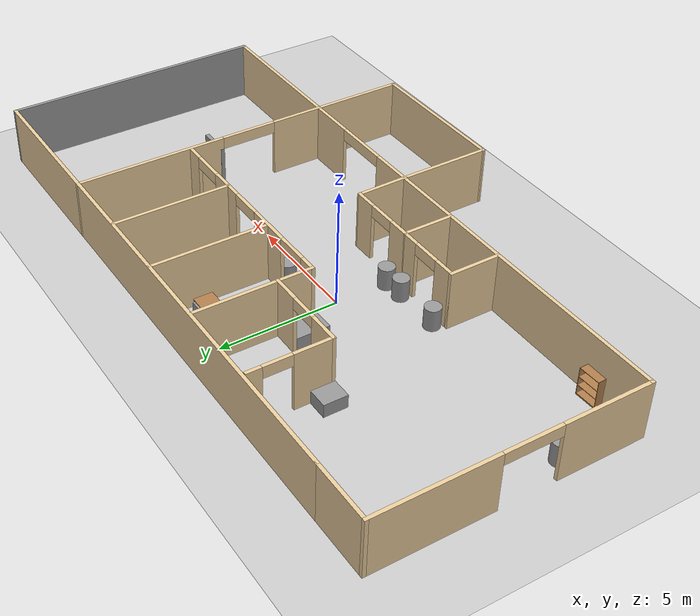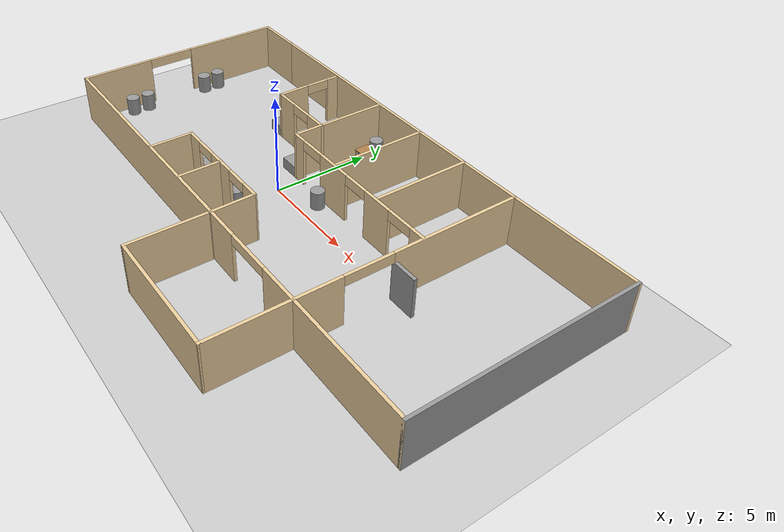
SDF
<sdf version="1.6">
 <world name="default">
  <model name="ground_plane">
   <static>true</static>
   <link name="link">
    <collision name="collision">
     <geometry><plane><normal>0 0 1</normal><size>100 100</size></plane></geometry>
     <surface>
      <contact><collide_bitmask>65535</collide_bitmask></contact>
      <friction><ode><mu>100</mu><mu2>50</mu2></ode></friction>
     </surface>
    </collision>
    <visual name="visual">
     <cast_shadows>0</cast_shadows>
     <geometry><plane><normal>0 0 1</normal><size>100 100</size></plane></geometry>
     <material>
      <script><uri>file://media/materials/scripts/gazebo.material</uri><name>Gazebo/Grey</name></script>
     </material>
    </visual>
   </link>
  </model>
  <model name="office-final">
   <static>true</static>
   <pose>2.08602 -1.20157 0 0 -0 0</pose>
   <link name="Door_10">
    <collision name="Door_10_Collision">
     <geometry><box><size>1.35 0.17 2</size></box></geometry>
     <pose>0 0 1 0 -0 0</pose>
    </collision>
    <visual name="Door_10_Visual">
     <pose>0 0 1 0 -0 0</pose>
     <geometry><box><size>1.35 0.17 2</size></box></geometry>
     <material>
      <script><uri>file://media/materials/scripts/gazebo.material</uri><name>Gazebo/Grey</name></script>
     </material>
    </visual>
    <pose>7.39418 1.10816 0 0 -0 0</pose>
   </link>
   <link name="Wall_0">
    <collision name="Wall_0_Collision">
     <geometry><box><size>11.25 0.15 2.5</size></box></geometry>
     <pose>0 0 1.25 0 -0 0</pose>
    </collision>
    <visual name="Wall_0_Visual">
     <pose>0 0 1.25 0 -0 0</pose>
     <geometry><box><size>11.25 0.15 2.5</size></box></geometry>
     <material>
      <script><uri>file://media/materials/scripts/gazebo.material</uri><name>Gazebo/Grey</name></script>
      <ambient>1 1 1 1</ambient>
     </material>
     <meta><layer>0</layer></meta>
    </visual>
    <pose>13.225 1.94023 0 0 -0 1.5708</pose>
   </link>
   <link name="Wall_1">
    <collision name="Wall_1_Collision">
     <geometry><box><size>24 0.15 2.5</size></box></geometry>
     <pose>0 0 1.25 0 -0 0</pose>
    </collision>
    <visual name="Wall_1_Visual">
     <pose>0 0 1.25 0 -0 0</pose>
     <geometry><box><size>24 0.15 2.5</size></box></geometry>
     <material>
      <script><uri>file://media/materials/scripts/gazebo.material</uri><name>Gazebo/Grey</name></script>
      <ambient>0.921569 0.807843 0.615686 1</ambient>
     </material>
     <meta><layer>0</layer></meta>
    </visual>
    <pose>1.3 7.49023 0 0 -0 3.14159</pose>
   </link>
   <link name="Wall_12">
    <collision name="Wall_12_Collision">
     <geometry><box><size>5 0.15 2.5</size></box></geometry>
     <pose>0 0 1.25 0 -0 0</pose>
    </collision>
    <visual name="Wall_12_Visual">
     <pose>0 0 1.25 0 -0 0</pose>
     <geometry><box><size>5 0.15 2.5</size></box></geometry>
     <material>
      <script><uri>file://media/materials/scripts/gazebo.material</uri><name>Gazebo/Grey</name></script>
      <ambient>0.921569 0.807843 0.615686 1</ambient>
     </material>
     <meta><layer>0</layer></meta>
    </visual>
    <pose>-2.48513 4.96387 0 0 -0 1.5708</pose>
   </link>
   <link name="Wall_14">
    <collision name="Wall_14_Collision">
     <geometry><box><size>2.25 0.15 2.5</size></box></geometry>
     <pose>0 0 1.25 0 -0 0</pose>
    </collision>
    <visual name="Wall_14_Visual">
     <pose>0 0 1.25 0 -0 0</pose>
     <geometry><box><size>2.25 0.15 2.5</size></box></geometry>
     <material>
      <script><uri>file://media/materials/scripts/gazebo.material</uri><name>Gazebo/Grey</name></script>
      <ambient>0.921569 0.807843 0.615686 1</ambient>
     </material>
     <meta><layer>0</layer></meta>
    </visual>
    <pose>-5.35061 -2.55476 0 0 -0 1.5708</pose>
   </link>
   <link name="Wall_15">
    <pose>-2.42561 -1.50476 0 0 -0 0</pose>
    <visual name="Wall_15_Visual_0">
     <pose>-2.51281 0 1.25 0 -0 0</pose>
     <geometry><box><size>0.974378 0.15 2.5</size></box></geometry>
     <material>
      <script><uri>file://media/materials/scripts/gazebo.material</uri><name>Gazebo/Grey</name></script>
      <ambient>0.921569 0.807843 0.615686 1</ambient>
     </material>
     <meta><layer>0</layer></meta>
    </visual>
    <collision name="Wall_15_Collision_0">
     <geometry><box><size>0.974378 0.15 2.5</size></box></geometry>
     <pose>-2.51281 0 1.25 0 -0 0</pose>
    </collision>
    <visual name="Wall_15_Visual_1">
     <pose>-0.009677 0 1.25 0 -0 0</pose>
     <geometry><box><size>1.63189 0.15 2.5</size></box></geometry>
     <material>
      <script><uri>file://media/materials/scripts/gazebo.material</uri><name>Gazebo/Grey</name></script>
      <ambient>0.921569 0.807843 0.615686 1</ambient>
     </material>
     <meta><layer>0</layer></meta>
    </visual>
    <collision name="Wall_15_Collision_1">
     <geometry><box><size>1.63189 0.15 2.5</size></box></geometry>
     <pose>-0.009677 0 1.25 0 -0 0</pose>
    </collision>
    <visual name="Wall_15_Visual_2">
     <pose>2.50313 0 1.25 0 -0 0</pose>
     <geometry><box><size>0.993732 0.15 2.5</size></box></geometry>
     <material>
      <script><uri>file://media/materials/scripts/gazebo.material</uri><name>Gazebo/Grey</name></script>
      <ambient>0.921569 0.807843 0.615686 1</ambient>
     </material>
     <meta><layer>0</layer></meta>
    </visual>
    <collision name="Wall_15_Collision_2">
     <geometry><box><size>0.993732 0.15 2.5</size></box></geometry>
     <pose>2.50313 0 1.25 0 -0 0</pose>
    </collision>
    <visual name="Wall_15_Visual_3">
     <pose>-1.42562 0 2.25 0 -0 0</pose>
     <geometry><box><size>1.2 0.15 0.5</size></box></geometry>
     <material>
      <script><uri>file://media/materials/scripts/gazebo.material</uri><name>Gazebo/Grey</name></script>
      <ambient>0.921569 0.807843 0.615686 1</ambient>
     </material>
     <meta><layer>0</layer></meta>
    </visual>
    <collision name="Wall_15_Collision_3">
     <geometry><box><size>1.2 0.15 0.5</size></box></geometry>
     <pose>-1.42562 0 2.25 0 -0 0</pose>
    </collision>
    <visual name="Wall_15_Visual_4">
     <pose>1.40627 0 2.25 0 -0 0</pose>
     <geometry><box><size>1.2 0.15 0.5</size></box></geometry>
     <material>
      <script><uri>file://media/materials/scripts/gazebo.material</uri><name>Gazebo/Grey</name></script>
      <ambient>0.921569 0.807843 0.615686 1</ambient>
     </material>
     <meta><layer>0</layer></meta>
    </visual>
    <collision name="Wall_15_Collision_4">
     <geometry><box><size>1.2 0.15 0.5</size></box></geometry>
     <pose>1.40627 0 2.25 0 -0 0</pose>
    </collision>
   </link>
   <link name="Wall_16">
    <collision name="Wall_16_Collision">
     <geometry><box><size>2.2954 0.15 2.5</size></box></geometry>
     <pose>0 0 1.25 0 -0 0</pose>
    </collision>
    <visual name="Wall_16_Visual">
     <pose>0 0 1.25 0 -0 0</pose>
     <geometry><box><size>2.2954 0.15 2.5</size></box></geometry>
     <material>
      <script><uri>file://media/materials/scripts/gazebo.material</uri><name>Gazebo/Grey</name></script>
      <ambient>0.921569 0.807843 0.615686 1</ambient>
     </material>
     <meta><layer>0</layer></meta>
    </visual>
    <pose>0.516727 -2.57732 0 0 -0 -1.55463</pose>
   </link>
   <link name="Wall_19">
    <collision name="Wall_19_Collision">
     <geometry><box><size>2.25 0.15 2.5</size></box></geometry>
     <pose>0 0 1.25 0 -0 0</pose>
    </collision>
    <visual name="Wall_19_Visual">
     <pose>0 0 1.25 0 -0 0</pose>
     <geometry><box><size>2.25 0.15 2.5</size></box></geometry>
     <material>
      <script><uri>file://media/materials/scripts/gazebo.material</uri><name>Gazebo/Grey</name></script>
      <ambient>0.921569 0.807843 0.615686 1</ambient>
     </material>
     <meta><layer>0</layer></meta>
    </visual>
    <pose>-2.50061 -2.55476 0 0 -0 -1.5708</pose>
   </link>
   <link name="Wall_2">
    <collision name="Wall_2_Collision">
     <geometry><box><size>2.75 0.15 2.5</size></box></geometry>
     <pose>0 0 1.25 0 -0 0</pose>
    </collision>
    <visual name="Wall_2_Visual">
     <pose>0 0 1.25 0 -0 0</pose>
     <geometry><box><size>2.75 0.15 2.5</size></box></geometry>
     <material>
      <script><uri>file://media/materials/scripts/gazebo.material</uri><name>Gazebo/Grey</name></script>
      <ambient>0.921569 0.807843 0.615686 1</ambient>
     </material>
     <meta><layer>0</layer></meta>
    </visual>
    <pose>-11.925 7.49023 0 0 -0 3.14159</pose>
   </link>
   <link name="Wall_21">
    <collision name="Wall_21_Collision">
     <geometry><box><size>5 0.15 2.5</size></box></geometry>
     <pose>0 0 1.25 0 -0 0</pose>
    </collision>
    <visual name="Wall_21_Visual">
     <pose>0 0 1.25 0 -0 0</pose>
     <geometry><box><size>5 0.15 2.5</size></box></geometry>
     <material>
      <script><uri>file://media/materials/scripts/gazebo.material</uri><name>Gazebo/Grey</name></script>
      <ambient>0.921569 0.807843 0.615686 1</ambient>
     </material>
     <meta><layer>0</layer></meta>
    </visual>
    <pose>0.61017 5.06244 0 0 -0 -1.5708</pose>
   </link>
   <link name="Wall_24">
    <collision name="Wall_24_Collision">
     <geometry><box><size>5 0.15 2.5</size></box></geometry>
     <pose>0 0 1.25 0 -0 0</pose>
    </collision>
    <visual name="Wall_24_Visual">
     <pose>0 0 1.25 0 -0 0</pose>
     <geometry><box><size>5 0.15 2.5</size></box></geometry>
     <material>
      <script><uri>file://media/materials/scripts/gazebo.material</uri><name>Gazebo/Grey</name></script>
      <ambient>0.921569 0.807843 0.615686 1</ambient>
     </material>
     <meta><layer>0</layer></meta>
    </visual>
    <pose>3.65272 5.02706 0 0 -0 -1.5708</pose>
   </link>
   <link name="Wall_26">
    <collision name="Wall_26_Collision">
     <geometry><box><size>3.99038 0.15 2.5</size></box></geometry>
     <pose>0 0 1.25 0 -0 0</pose>
    </collision>
    <visual name="Wall_26_Visual">
     <pose>0 0 1.25 0 -0 0</pose>
     <geometry><box><size>3.99038 0.15 2.5</size></box></geometry>
     <material>
      <script><uri>file://media/materials/scripts/gazebo.material</uri><name>Gazebo/Grey</name></script>
      <ambient>0.921569 0.807843 0.615686 1</ambient>
     </material>
     <meta><layer>0</layer></meta>
    </visual>
    <pose>0.534066 -5.56987 0 0 -0 -1.5708</pose>
   </link>
   <link name="Wall_3">
    <pose>-13.225 1.94023 0 0 -0 -1.5708</pose>
    <visual name="Wall_3_Visual_0">
     <pose>-3.07666 0 1.25 0 -0 0</pose>
     <geometry><box><size>5.09669 0.15 2.5</size></box></geometry>
     <material>
      <script><uri>file://media/materials/scripts/gazebo.material</uri><name>Gazebo/Grey</name></script>
      <ambient>0.921569 0.807843 0.615686 1</ambient>
     </material>
     <meta><layer>0</layer></meta>
    </visual>
    <collision name="Wall_3_Collision_0">
     <geometry><box><size>5.09669 0.15 2.5</size></box></geometry>
     <pose>-3.07666 0 1.25 0 -0 0</pose>
    </collision>
    <visual name="Wall_3_Visual_1">
     <pose>3.74834 0 1.25 0 -0 0</pose>
     <geometry><box><size>3.75331 0.15 2.5</size></box></geometry>
     <material>
      <script><uri>file://media/materials/scripts/gazebo.material</uri><name>Gazebo/Grey</name></script>
      <ambient>0.921569 0.807843 0.615686 1</ambient>
     </material>
     <meta><layer>0</layer></meta>
    </visual>
    <collision name="Wall_3_Collision_1">
     <geometry><box><size>3.75331 0.15 2.5</size></box></geometry>
     <pose>3.74834 0 1.25 0 -0 0</pose>
    </collision>
    <visual name="Wall_3_Visual_2">
     <pose>0.671688 0 2.25 0 -0 0</pose>
     <geometry><box><size>2.4 0.15 0.5</size></box></geometry>
     <material>
      <script><uri>file://media/materials/scripts/gazebo.material</uri><name>Gazebo/Grey</name></script>
      <ambient>0.921569 0.807843 0.615686 1</ambient>
     </material>
     <meta><layer>0</layer></meta>
    </visual>
    <collision name="Wall_3_Collision_2">
     <geometry><box><size>2.4 0.15 0.5</size></box></geometry>
     <pose>0.671688 0 2.25 0 -0 0</pose>
    </collision>
   </link>
   <link name="Wall_35">
    <collision name="Wall_35_Collision">
     <geometry><box><size>4 0.15 2.5</size></box></geometry>
     <pose>0 0 1.25 0 -0 0</pose>
    </collision>
    <visual name="Wall_35_Visual">
     <pose>0 0 1.25 0 -0 0</pose>
     <geometry><box><size>4 0.15 2.5</size></box></geometry>
     <material>
      <script><uri>file://media/materials/scripts/gazebo.material</uri><name>Gazebo/Grey</name></script>
      <ambient>0.921569 0.807843 0.615686 1</ambient>
     </material>
     <meta><layer>0</layer></meta>
    </visual>
    <pose>6.80105 -5.53477 0 0 -0 -1.5708</pose>
   </link>
   <link name="Wall_37">
    <collision name="Wall_37_Collision">
     <geometry><box><size>6.41706 0.15 2.5</size></box></geometry>
     <pose>0 0 1.25 0 -0 0</pose>
    </collision>
    <visual name="Wall_37_Visual">
     <pose>0 0 1.25 0 -0 0</pose>
     <geometry><box><size>6.41706 0.15 2.5</size></box></geometry>
     <material>
      <script><uri>file://media/materials/scripts/gazebo.material</uri><name>Gazebo/Grey</name></script>
      <ambient>0.921569 0.807843 0.615686 1</ambient>
     </material>
     <meta><layer>0</layer></meta>
    </visual>
    <pose>3.66756 -7.47482 0 0 -0 0.004804</pose>
   </link>
   <link name="Wall_39">
    <pose>-4.27574 3.96305 0 0 -0 3.14159</pose>
    <visual name="Wall_39_Visual_0">
     <pose>-1.26771 0 1.25 0 -0 0</pose>
     <geometry><box><size>1.21459 0.15 2.5</size></box></geometry>
     <material>
      <script><uri>file://media/materials/scripts/gazebo.material</uri><name>Gazebo/Grey</name></script>
      <ambient>0.921569 0.807843 0.615686 1</ambient>
     </material>
     <meta><layer>0</layer></meta>
    </visual>
    <collision name="Wall_39_Collision_0">
     <geometry><box><size>1.21459 0.15 2.5</size></box></geometry>
     <pose>-1.26771 0 1.25 0 -0 0</pose>
    </collision>
    <visual name="Wall_39_Visual_1">
     <pose>1.2073 0 1.25 0 -0 0</pose>
     <geometry><box><size>1.33541 0.15 2.5</size></box></geometry>
     <material>
      <script><uri>file://media/materials/scripts/gazebo.material</uri><name>Gazebo/Grey</name></script>
      <ambient>0.921569 0.807843 0.615686 1</ambient>
     </material>
     <meta><layer>0</layer></meta>
    </visual>
    <collision name="Wall_39_Collision_1">
     <geometry><box><size>1.33541 0.15 2.5</size></box></geometry>
     <pose>1.2073 0 1.25 0 -0 0</pose>
    </collision>
    <visual name="Wall_39_Visual_2">
     <pose>-0.06041 0 2.25 0 -0 0</pose>
     <geometry><box><size>1.2 0.15 0.5</size></box></geometry>
     <material>
      <script><uri>file://media/materials/scripts/gazebo.material</uri><name>Gazebo/Grey</name></script>
      <ambient>0.921569 0.807843 0.615686 1</ambient>
     </material>
     <meta><layer>0</layer></meta>
    </visual>
    <collision name="Wall_39_Collision_2">
     <geometry><box><size>1.2 0.15 0.5</size></box></geometry>
     <pose>-0.06041 0 2.25 0 -0 0</pose>
    </collision>
   </link>
   <link name="Wall_4">
    <pose>-0 -3.60977 0 0 -0 0</pose>
    <visual name="Wall_4_Visual_0">
     <pose>-5.47979 0 1.25 0 -0 0</pose>
     <geometry><box><size>15.6404 0.15 2.5</size></box></geometry>
     <material>
      <script><uri>file://media/materials/scripts/gazebo.material</uri><name>Gazebo/Grey</name></script>
      <ambient>0.921569 0.807843 0.615686 1</ambient>
     </material>
     <meta><layer>0</layer></meta>
    </visual>
    <collision name="Wall_4_Collision_0">
     <geometry><box><size>15.6404 0.15 2.5</size></box></geometry>
     <pose>-5.47979 0 1.25 0 -0 0</pose>
    </collision>
    <visual name="Wall_4_Visual_1">
     <pose>9.02021 0 1.25 0 -0 0</pose>
     <geometry><box><size>8.55959 0.15 2.5</size></box></geometry>
     <material>
      <script><uri>file://media/materials/scripts/gazebo.material</uri><name>Gazebo/Grey</name></script>
      <ambient>0.921569 0.807843 0.615686 1</ambient>
     </material>
     <meta><layer>0</layer></meta>
    </visual>
    <collision name="Wall_4_Collision_1">
     <geometry><box><size>8.55959 0.15 2.5</size></box></geometry>
     <pose>9.02021 0 1.25 0 -0 0</pose>
    </collision>
    <visual name="Wall_4_Visual_2">
     <pose>3.54041 0 2.25 0 -0 0</pose>
     <geometry><box><size>2.4 0.15 0.5</size></box></geometry>
     <material>
      <script><uri>file://media/materials/scripts/gazebo.material</uri><name>Gazebo/Grey</name></script>
      <ambient>0.921569 0.807843 0.615686 1</ambient>
     </material>
     <meta><layer>0</layer></meta>
    </visual>
    <collision name="Wall_4_Collision_2">
     <geometry><box><size>2.4 0.15 0.5</size></box></geometry>
     <pose>3.54041 0 2.25 0 -0 0</pose>
    </collision>
   </link>
   <link name="Wall_40">
    <pose>-6.07574 5.63805 0 0 -0 1.5708</pose>
    <visual name="Wall_40_Visual_0">
     <pose>-0.9202 0 1.25 0 -0 0</pose>
     <geometry><box><size>1.6596 0.15 2.5</size></box></geometry>
     <material>
      <script><uri>file://media/materials/scripts/gazebo.material</uri><name>Gazebo/Grey</name></script>
      <ambient>0.921569 0.807843 0.615686 1</ambient>
     </material>
     <meta><layer>0</layer></meta>
    </visual>
    <collision name="Wall_40_Collision_0">
     <geometry><box><size>1.6596 0.15 2.5</size></box></geometry>
     <pose>-0.9202 0 1.25 0 -0 0</pose>
    </collision>
    <visual name="Wall_40_Visual_1">
     <pose>1.4298 0 1.25 0 -0 0</pose>
     <geometry><box><size>0.640399 0.15 2.5</size></box></geometry>
     <material>
      <script><uri>file://media/materials/scripts/gazebo.material</uri><name>Gazebo/Grey</name></script>
      <ambient>0.921569 0.807843 0.615686 1</ambient>
     </material>
     <meta><layer>0</layer></meta>
    </visual>
    <collision name="Wall_40_Collision_1">
     <geometry><box><size>0.640399 0.15 2.5</size></box></geometry>
     <pose>1.4298 0 1.25 0 -0 0</pose>
    </collision>
    <visual name="Wall_40_Visual_2">
     <pose>0.509601 0 2.25 0 -0 0</pose>
     <geometry><box><size>1.2 0.15 0.5</size></box></geometry>
     <material>
      <script><uri>file://media/materials/scripts/gazebo.material</uri><name>Gazebo/Grey</name></script>
      <ambient>0.921569 0.807843 0.615686 1</ambient>
     </material>
     <meta><layer>0</layer></meta>
    </visual>
    <collision name="Wall_40_Collision_2">
     <geometry><box><size>1.2 0.15 0.5</size></box></geometry>
     <pose>0.509601 0 2.25 0 -0 0</pose>
    </collision>
   </link>
   <link name="Wall_5">
    <collision name="Wall_5_Collision">
     <geometry><box><size>11.25 0.15 2.5</size></box></geometry>
     <pose>0 0 1.25 0 -0 0</pose>
    </collision>
    <visual name="Wall_5_Visual">
     <pose>0 0 1.25 0 -0 0</pose>
     <geometry><box><size>11.25 0.15 2.5</size></box></geometry>
     <material>
      <script><uri>file://media/materials/scripts/gazebo.material</uri><name>Gazebo/Grey</name></script>
      <ambient>0.921569 0.807843 0.615686 1</ambient>
     </material>
     <meta><layer>0</layer></meta>
    </visual>
    <pose>13.225 1.94023 0 0 -0 1.5708</pose>
   </link>
   <link name="Wall_7">
    <pose>6.80105 1.94023 0 0 -0 1.5708</pose>
    <visual name="Wall_7_Visual_0">
     <pose>-4.46433 0 1.25 0 -0 0</pose>
     <geometry><box><size>2.32135 0.15 2.5</size></box></geometry>
     <material>
      <script><uri>file://media/materials/scripts/gazebo.material</uri><name>Gazebo/Grey</name></script>
      <ambient>0.921569 0.807843 0.615686 1</ambient>
     </material>
     <meta><layer>0</layer></meta>
    </visual>
    <collision name="Wall_7_Collision_0">
     <geometry><box><size>2.32135 0.15 2.5</size></box></geometry>
     <pose>-4.46433 0 1.25 0 -0 0</pose>
    </collision>
    <visual name="Wall_7_Visual_1">
     <pose>2.36067 0 1.25 0 -0 0</pose>
     <geometry><box><size>6.52865 0.15 2.5</size></box></geometry>
     <material>
      <script><uri>file://media/materials/scripts/gazebo.material</uri><name>Gazebo/Grey</name></script>
      <ambient>0.921569 0.807843 0.615686 1</ambient>
     </material>
     <meta><layer>0</layer></meta>
    </visual>
    <collision name="Wall_7_Collision_1">
     <geometry><box><size>6.52865 0.15 2.5</size></box></geometry>
     <pose>2.36067 0 1.25 0 -0 0</pose>
    </collision>
    <visual name="Wall_7_Visual_2">
     <pose>-2.10365 0 2.25 0 -0 0</pose>
     <geometry><box><size>2.4 0.15 0.5</size></box></geometry>
     <material>
      <script><uri>file://media/materials/scripts/gazebo.material</uri><name>Gazebo/Grey</name></script>
      <ambient>0.921569 0.807843 0.615686 1</ambient>
     </material>
     <meta><layer>0</layer></meta>
    </visual>
    <collision name="Wall_7_Collision_2">
     <geometry><box><size>2.4 0.15 0.5</size></box></geometry>
     <pose>-2.10365 0 2.25 0 -0 0</pose>
    </collision>
   </link>
   <link name="Wall_9">
    <pose>2.12737 2.53887 0 0 -0 3.14159</pose>
    <visual name="Wall_9_Visual_0">
     <pose>-4.27593 0 1.25 0 -0 0</pose>
     <geometry><box><size>0.823145 0.15 2.5</size></box></geometry>
     <material>
      <script><uri>file://media/materials/scripts/gazebo.material</uri><name>Gazebo/Grey</name></script>
      <ambient>0.921569 0.807843 0.615686 1</ambient>
     </material>
     <meta><layer>0</layer></meta>
    </visual>
    <collision name="Wall_9_Collision_0">
     <geometry><box><size>0.823145 0.15 2.5</size></box></geometry>
     <pose>-4.27593 0 1.25 0 -0 0</pose>
    </collision>
    <visual name="Wall_9_Visual_1">
     <pose>-1.64727 0 1.25 0 -0 0</pose>
     <geometry><box><size>1.63417 0.15 2.5</size></box></geometry>
     <material>
      <script><uri>file://media/materials/scripts/gazebo.material</uri><name>Gazebo/Grey</name></script>
      <ambient>0.921569 0.807843 0.615686 1</ambient>
     </material>
     <meta><layer>0</layer></meta>
    </visual>
    <collision name="Wall_9_Collision_1">
     <geometry><box><size>1.63417 0.15 2.5</size></box></geometry>
     <pose>-1.64727 0 1.25 0 -0 0</pose>
    </collision>
    <visual name="Wall_9_Visual_2">
     <pose>1.54876 0 1.25 0 -0 0</pose>
     <geometry><box><size>1.9579 0.15 2.5</size></box></geometry>
     <material>
      <script><uri>file://media/materials/scripts/gazebo.material</uri><name>Gazebo/Grey</name></script>
      <ambient>0.921569 0.807843 0.615686 1</ambient>
     </material>
     <meta><layer>0</layer></meta>
    </visual>
    <collision name="Wall_9_Collision_2">
     <geometry><box><size>1.9579 0.15 2.5</size></box></geometry>
     <pose>1.54876 0 1.25 0 -0 0</pose>
    </collision>
    <visual name="Wall_9_Visual_3">
     <pose>4.30761 0 1.25 0 -0 0</pose>
     <geometry><box><size>0.759788 0.15 2.5</size></box></geometry>
     <material>
      <script><uri>file://media/materials/scripts/gazebo.material</uri><name>Gazebo/Grey</name></script>
      <ambient>0.921569 0.807843 0.615686 1</ambient>
     </material>
     <meta><layer>0</layer></meta>
    </visual>
    <collision name="Wall_9_Collision_3">
     <geometry><box><size>0.759788 0.15 2.5</size></box></geometry>
     <pose>4.30761 0 1.25 0 -0 0</pose>
    </collision>
    <visual name="Wall_9_Visual_4">
     <pose>-3.16436 0 2.25 0 -0 0</pose>
     <geometry><box><size>1.4 0.15 0.5</size></box></geometry>
     <material>
      <script><uri>file://media/materials/scripts/gazebo.material</uri><name>Gazebo/Grey</name></script>
      <ambient>0.921569 0.807843 0.615686 1</ambient>
     </material>
     <meta><layer>0</layer></meta>
    </visual>
    <collision name="Wall_9_Collision_4">
     <geometry><box><size>1.4 0.15 0.5</size></box></geometry>
     <pose>-3.16436 0 2.25 0 -0 0</pose>
    </collision>
    <visual name="Wall_9_Visual_5">
     <pose>-0.130187 0 2.25 0 -0 0</pose>
     <geometry><box><size>1.4 0.15 0.5</size></box></geometry>
     <material>
      <script><uri>file://media/materials/scripts/gazebo.material</uri><name>Gazebo/Grey</name></script>
      <ambient>0.921569 0.807843 0.615686 1</ambient>
     </material>
     <meta><layer>0</layer></meta>
    </visual>
    <collision name="Wall_9_Collision_5">
     <geometry><box><size>1.4 0.15 0.5</size></box></geometry>
     <pose>-0.130187 0 2.25 0 -0 0</pose>
    </collision>
    <visual name="Wall_9_Visual_6">
     <pose>3.22771 0 2.25 0 -0 0</pose>
     <geometry><box><size>1.4 0.15 0.5</size></box></geometry>
     <material>
      <script><uri>file://media/materials/scripts/gazebo.material</uri><name>Gazebo/Grey</name></script>
      <ambient>0.921569 0.807843 0.615686 1</ambient>
     </material>
     <meta><layer>0</layer></meta>
    </visual>
    <collision name="Wall_9_Collision_6">
     <geometry><box><size>1.4 0.15 0.5</size></box></geometry>
     <pose>3.22771 0 2.25 0 -0 0</pose>
    </collision>
   </link>
   <static>1</static>
  </model>
  <model name="table_1">
   <static>true</static>
   <link name="link">
    <collision name="surface">
     <pose>0 0 1 0 -0 0</pose>
     <geometry><box><size>1.5 0.8 0.03</size></box></geometry>
     <surface><friction><ode><mu>0.6</mu><mu2>0.6</mu2></ode></friction></surface>
    </collision>
    <visual name="visual1">
     <pose>0 0 1 0 -0 0</pose>
     <geometry><box><size>1.5 0.8 0.03</size></box></geometry>
     <material>
      <script><uri>file://media/materials/scripts/gazebo.material</uri><name>Gazebo/Wood</name></script>
     </material>
    </visual>
    <collision name="front_left_leg">
     <pose>0.68 0.38 0.5 0 -0 0</pose>
     <geometry><cylinder><radius>0.02</radius><length>1</length></cylinder></geometry>
    </collision>
    <visual name="front_left_leg">
     <pose>0.68 0.38 0.5 0 -0 0</pose>
     <geometry><cylinder><radius>0.02</radius><length>1</length></cylinder></geometry>
     <material>
      <script><uri>file://media/materials/scripts/gazebo.material</uri><name>Gazebo/Grey</name></script>
     </material>
    </visual>
    <collision name="front_right_leg">
     <pose>0.68 -0.38 0.5 0 -0 0</pose>
     <geometry><cylinder><radius>0.02</radius><length>1</length></cylinder></geometry>
    </collision>
    <visual name="front_right_leg">
     <pose>0.68 -0.38 0.5 0 -0 0</pose>
     <geometry><cylinder><radius>0.02</radius><length>1</length></cylinder></geometry>
     <material>
      <script><uri>file://media/materials/scripts/gazebo.material</uri><name>Gazebo/Grey</name></script>
     </material>
    </visual>
    <collision name="back_right_leg">
     <pose>-0.68 -0.38 0.5 0 -0 0</pose>
     <geometry><cylinder><radius>0.02</radius><length>1</length></cylinder></geometry>
    </collision>
    <visual name="back_right_leg">
     <pose>-0.68 -0.38 0.5 0 -0 0</pose>
     <geometry><cylinder><radius>0.02</radius><length>1</length></cylinder></geometry>
     <material>
      <script><uri>file://media/materials/scripts/gazebo.material</uri><name>Gazebo/Grey</name></script>
     </material>
    </visual>
    <collision name="back_left_leg">
     <pose>-0.68 0.38 0.5 0 -0 0</pose>
     <geometry><cylinder><radius>0.02</radius><length>1</length></cylinder></geometry>
    </collision>
    <visual name="back_left_leg">
     <pose>-0.68 0.38 0.5 0 -0 0</pose>
     <geometry><cylinder><radius>0.02</radius><length>1</length></cylinder></geometry>
     <material>
      <script><uri>file://media/materials/scripts/gazebo.material</uri><name>Gazebo/Grey</name></script>
     </material>
    </visual>
   </link>
   <pose>1.13946 4.60865 0 0 -0 0</pose>
  </model>
  <model name="bookshelf_1">
   <static>true</static>
   <link name="link">
    <inertial><mass>1</mass></inertial>
    <collision name="back">
     <pose>0 0.005 0.6 0 -0 0</pose>
     <geometry><box><size>0.9 0.01 1.2</size></box></geometry>
    </collision>
    <visual name="visual1">
     <pose>0 0.005 0.6 0 -0 0</pose>
     <geometry><box><size>0.9 0.01 1.2</size></box></geometry>
     <material>
      <script><uri>file://media/materials/scripts/gazebo.material</uri><name>Gazebo/Wood</name></script>
     </material>
    </visual>
    <collision name="left_side">
     <pose>0.45 -0.195 0.6 0 -0 0</pose>
     <geometry><box><size>0.02 0.4 1.2</size></box></geometry>
    </collision>
    <visual name="visual2">
     <pose>0.45 -0.195 0.6 0 -0 0</pose>
     <geometry><box><size>0.02 0.4 1.2</size></box></geometry>
     <material>
      <script><uri>file://media/materials/scripts/gazebo.material</uri><name>Gazebo/Wood</name></script>
     </material>
    </visual>
    <collision name="right_side">
     <pose>-0.45 -0.195 0.6 0 -0 0</pose>
     <geometry><box><size>0.02 0.4 1.2</size></box></geometry>
    </collision>
    <visual name="visual3">
     <pose>-0.45 -0.195 0.6 0 -0 0</pose>
     <geometry><box><size>0.02 0.4 1.2</size></box></geometry>
     <material>
      <script><uri>file://media/materials/scripts/gazebo.material</uri><name>Gazebo/Wood</name></script>
     </material>
    </visual>
    <collision name="bottom">
     <pose>0 -0.195 0.03 0 -0 0</pose>
     <geometry><box><size>0.88 0.4 0.06</size></box></geometry>
    </collision>
    <visual name="visual4">
     <pose>0 -0.195 0.03 0 -0 0</pose>
     <geometry><box><size>0.88 0.4 0.06</size></box></geometry>
     <material>
      <script><uri>file://media/materials/scripts/gazebo.material</uri><name>Gazebo/Wood</name></script>
     </material>
    </visual>
    <collision name="top">
     <pose>0 -0.195 1.19 0 -0 0</pose>
     <geometry><box><size>0.88 0.4 0.02</size></box></geometry>
    </collision>
    <visual name="visual5">
     <pose>0 -0.195 1.19 0 -0 0</pose>
     <geometry><box><size>0.88 0.4 0.02</size></box></geometry>
     <material>
      <script><uri>file://media/materials/scripts/gazebo.material</uri><name>Gazebo/Wood</name></script>
     </material>
    </visual>
    <collision name="low_shelf">
     <pose>0 -0.195 0.43 0 -0 0</pose>
     <geometry><box><size>0.88 0.4 0.02</size></box></geometry>
    </collision>
    <visual name="visual6">
     <pose>0 -0.195 0.43 0 -0 0</pose>
     <geometry><box><size>0.88 0.4 0.02</size></box></geometry>
     <material>
      <script><uri>file://media/materials/scripts/gazebo.material</uri><name>Gazebo/Wood</name></script>
     </material>
    </visual>
    <collision name="high_shelf">
     <pose>0 -0.195 0.8 0 -0 0</pose>
     <geometry><box><size>0.88 0.4 0.02</size></box></geometry>
    </collision>
    <visual name="visual7">
     <pose>0 -0.195 0.8 0 -0 0</pose>
     <geometry><box><size>0.88 0.4 0.02</size></box></geometry>
     <material>
      <script><uri>file://media/materials/scripts/gazebo.material</uri><name>Gazebo/Wood</name></script>
     </material>
    </visual>
   </link>
   <pose>-8.86002 -4.77717 0 0 0 -3.11114</pose>
  </model>
  <model name="unit_cylinder_1_clone">
   <static>true</static>
   <pose>-10.6123 2.55168 0.464258 0 -0 0</pose>
   <link name="link">
    <inertial>
     <mass>1</mass>
     <inertia><ixx>0.145833</ixx><ixy>0</ixy><ixz>0</ixz><iyy>0.145833</iyy><iyz>0</iyz><izz>0.125</izz></inertia>
    </inertial>
    <collision name="collision">
     <geometry><cylinder><radius>0.337949</radius><length>0.928516</length></cylinder></geometry>
    </collision>
    <visual name="visual">
     <geometry><cylinder><radius>0.337949</radius><length>0.928516</length></cylinder></geometry>
     <material>
      <script><name>Gazebo/Grey</name><uri>file://media/materials/scripts/gazebo.material</uri></script>
     </material>
    </visual>
   </link>
  </model>
  <model name="unit_cylinder_1_clone_0">
   <static>true</static>
   <pose>-10.55 -1.7776 0.464255 0 -0 0</pose>
   <link name="link">
    <inertial>
     <mass>1</mass>
     <inertia><ixx>0.145833</ixx><ixy>0</ixy><ixz>0</ixz><iyy>0.145833</iyy><iyz>0</iyz><izz>0.125</izz></inertia>
    </inertial>
    <collision name="collision">
     <geometry><cylinder><radius>0.337949</radius><length>0.928516</length></cylinder></geometry>
    </collision>
    <visual name="visual">
     <geometry><cylinder><radius>0.337949</radius><length>0.928516</length></cylinder></geometry>
     <material>
      <script><name>Gazebo/Grey</name><uri>file://media/materials/scripts/gazebo.material</uri></script>
     </material>
    </visual>
   </link>
  </model>
  <model name="unit_cylinder_1_clone_1">
   <static>true</static>
   <pose>-10.5484 -2.64161 0.464251 -0 -0 -0</pose>
   <link name="link">
    <inertial>
     <mass>1</mass>
     <inertia><ixx>0.145833</ixx><ixy>0</ixy><ixz>0</ixz><iyy>0.145833</iyy><iyz>0</iyz><izz>0.125</izz></inertia>
    </inertial>
    <collision name="collision">
     <geometry><cylinder><radius>0.337949</radius><length>0.928516</length></cylinder></geometry>
    </collision>
    <visual name="visual">
     <geometry><cylinder><radius>0.337949</radius><length>0.928516</length></cylinder></geometry>
     <material>
      <script><name>Gazebo/Grey</name><uri>file://media/materials/scripts/gazebo.material</uri></script>
     </material>
    </visual>
   </link>
  </model>
  <model name="unit_cylinder_1_clone_4">
   <static>true</static>
   <pose>0.207474 5.67632 0.464249 0 1e-06 0.0968</pose>
   <link name="link">
    <inertial>
     <mass>1</mass>
     <inertia><ixx>0.145833</ixx><ixy>0</ixy><ixz>0</ixz><iyy>0.145833</iyy><iyz>0</iyz><izz>0.125</izz></inertia>
    </inertial>
    <collision name="collision">
     <geometry><cylinder><radius>0.337949</radius><length>0.928516</length></cylinder></geometry>
    </collision>
    <visual name="visual">
     <geometry><cylinder><radius>0.337949</radius><length>0.928516</length></cylinder></geometry>
     <material>
      <script><name>Gazebo/Grey</name><uri>file://media/materials/scripts/gazebo.material</uri></script>
     </material>
    </visual>
   </link>
  </model>
  <model name="unit_box">
   <static>true</static>
   <pose>-1.00124 1.97353 0.282238 0 0 -5e-06</pose>
   <link name="link">
    <inertial>
     <mass>1</mass>
     <inertia>
      <ixx>0.166667</ixx>
      <ixy>0</ixy>
      <ixz>0</ixz>
      <iyy>0.166667</iyy>
      <iyz>0</iyz>
      <izz>0.166667</izz>
     </inertia>
    </inertial>
    <collision name="collision"><geometry><box><size>1.0499 1.40988 0.564477</size></box></geometry></collision>
    <visual name="visual">
     <geometry><box><size>1.0499 1.40988 0.564477</size></box></geometry>
     <material>
      <script><name>Gazebo/Grey</name><uri>file://media/materials/scripts/gazebo.material</uri></script>
     </material>
    </visual>
   </link>
  </model>
  <model name="unit_box_clone_0">
   <static>true</static>
   <pose>-4.4829 3.19062 0.282238 0 -0 -6e-06</pose>
   <link name="link">
    <inertial>
     <mass>1</mass>
     <inertia>
      <ixx>0.166667</ixx>
      <ixy>0</ixy>
      <ixz>0</ixz>
      <iyy>0.166667</iyy>
      <iyz>0</iyz>
      <izz>0.166667</izz>
     </inertia>
    </inertial>
    <collision name="collision"><geometry><box><size>0.836328 1 0.564477</size></box></geometry></collision>
    <visual name="visual">
     <geometry><box><size>0.836328 1 0.564477</size></box></geometry>
     <material>
      <script><name>Gazebo/Grey</name><uri>file://media/materials/scripts/gazebo.material</uri></script>
     </material>
    </visual>
   </link>
  </model>
  <model name="unit_box_0_clone">
   <static>true</static>
   <pose>1.13181 4.6989 0.487582 -1e-06 -0 -0.000231</pose>
   <link name="link">
    <inertial>
     <mass>1</mass>
     <inertia>
      <ixx>0.166667</ixx>
      <ixy>0</ixy>
      <ixz>0</ixz>
      <iyy>0.166667</iyy>
      <iyz>0</iyz>
      <izz>0.166667</izz>
     </inertia>
    </inertial>
    <collision name="collision"><geometry><box><size>1.27603 0.792247 0.975162</size></box></geometry></collision>
    <visual name="visual">
     <geometry><box><size>1.27603 0.792247 0.975162</size></box></geometry>
     <material>
      <script><name>Gazebo/Grey</name><uri>file://media/materials/scripts/gazebo.material</uri></script>
     </material>
    </visual>
   </link>
  </model>
  <model name="unit_cylinder_1_clone_3_clone_clone">
   <static>true</static>
   <pose>-0.930502 -2.26168 0.464251 -0 -0 -0</pose>
   <link name="link">
    <inertial>
     <mass>1</mass>
     <inertia><ixx>0.145833</ixx><ixy>0</ixy><ixz>0</ixz><iyy>0.145833</iyy><iyz>0</iyz><izz>0.125</izz></inertia>
    </inertial>
    <collision name="collision">
     <geometry><cylinder><radius>0.337949</radius><length>0.928516</length></cylinder></geometry>
    </collision>
    <visual name="visual">
     <geometry><cylinder><radius>0.337949</radius><length>0.928516</length></cylinder></geometry>
     <material>
      <script><name>Gazebo/Grey</name><uri>file://media/materials/scripts/gazebo.material</uri></script>
     </material>
    </visual>
   </link>
  </model>
  <model name="unit_cylinder_1_clone_3_clone_clone_clone">
   <static>true</static>
   <pose>-0.068818 -2.206 0.464251 -0 -0 -0</pose>
   <link name="link">
    <inertial>
     <mass>1</mass>
     <inertia><ixx>0.145833</ixx><ixy>0</ixy><ixz>0</ixz><iyy>0.145833</iyy><iyz>0</iyz><izz>0.125</izz></inertia>
    </inertial>
    <collision name="collision">
     <geometry><cylinder><radius>0.337949</radius><length>0.928516</length></cylinder></geometry>
    </collision>
    <visual name="visual">
     <geometry><cylinder><radius>0.337949</radius><length>0.928516</length></cylinder></geometry>
     <material>
      <script><name>Gazebo/Grey</name><uri>file://media/materials/scripts/gazebo.material</uri></script>
     </material>
    </visual>
   </link>
  </model>
  <model name="unit_cylinder_1_clone_3_clone_clone_clone_0">
   <static>true</static>
   <pose>2.08223 0.86686 0.464251 -0 -0 -0</pose>
   <link name="link">
    <inertial>
     <mass>1</mass>
     <inertia><ixx>0.145833</ixx><ixy>0</ixy><ixz>0</ixz><iyy>0.145833</iyy><iyz>0</iyz><izz>0.125</izz></inertia>
    </inertial>
    <collision name="collision">
     <geometry><cylinder><radius>0.337949</radius><length>0.928516</length></cylinder></geometry>
    </collision>
    <visual name="visual">
     <geometry><cylinder><radius>0.337949</radius><length>0.928516</length></cylinder></geometry>
     <material>
      <script><name>Gazebo/Grey</name><uri>file://media/materials/scripts/gazebo.material</uri></script>
     </material>
    </visual>
   </link>
  </model>
  <model name="unit_cylinder_1_clone_clone">
   <static>true</static>
   <pose>-10.6224 1.71322 0.464251 -0 -0 -0</pose>
   <link name="link">
    <inertial>
     <mass>1</mass>
     <inertia><ixx>0.145833</ixx><ixy>0</ixy><ixz>0</ixz><iyy>0.145833</iyy><iyz>0</iyz><izz>0.125</izz></inertia>
    </inertial>
    <collision name="collision">
     <geometry><cylinder><radius>0.337949</radius><length>0.928516</length></cylinder></geometry>
    </collision>
    <visual name="visual">
     <geometry><cylinder><radius>0.337949</radius><length>0.928516</length></cylinder></geometry>
     <material>
      <script><name>Gazebo/Grey</name><uri>file://media/materials/scripts/gazebo.material</uri></script>
     </material>
    </visual>
   </link>
  </model>
  <model name="unit_cylinder_1_clone_3_clone_clone_0">
   <static>true</static>
   <pose>-2.90654 -2.27573 0.464248 0 -0 0</pose>
   <link name="link">
    <inertial>
     <mass>1</mass>
     <inertia><ixx>0.145833</ixx><ixy>0</ixy><ixz>0</ixz><iyy>0.145833</iyy><iyz>0</iyz><izz>0.125</izz></inertia>
    </inertial>
    <collision name="collision">
     <geometry><cylinder><radius>0.337949</radius><length>0.928516</length></cylinder></geometry>
    </collision>
    <visual name="visual">
     <geometry><cylinder><radius>0.337949</radius><length>0.928516</length></cylinder></geometry>
     <material>
      <script><name>Gazebo/Grey</name><uri>file://media/materials/scripts/gazebo.material</uri></script>
     </material>
    </visual>
   </link>
  </model>
 </world>
</sdf>
